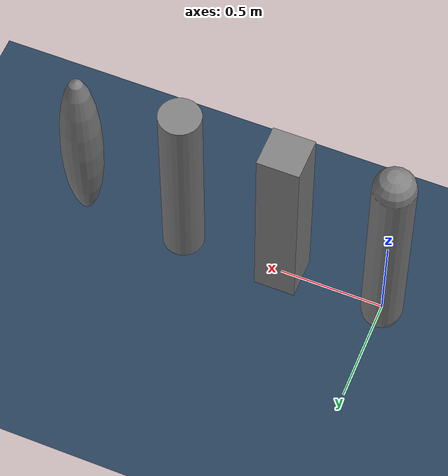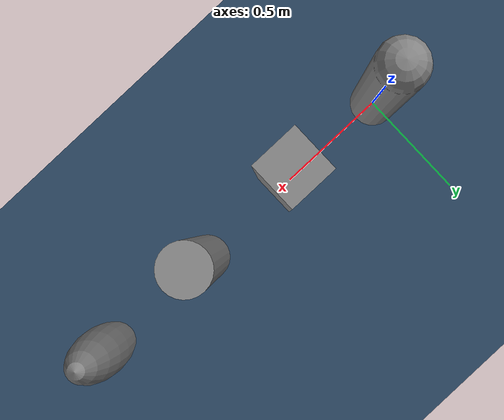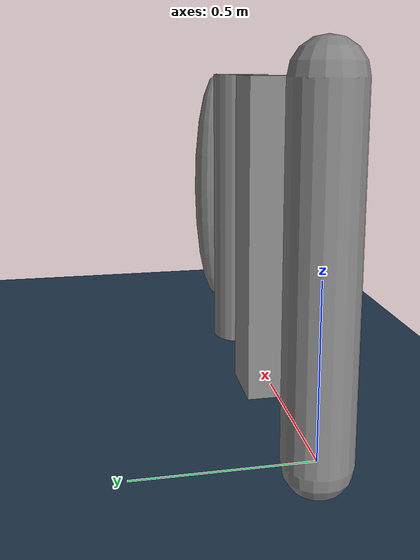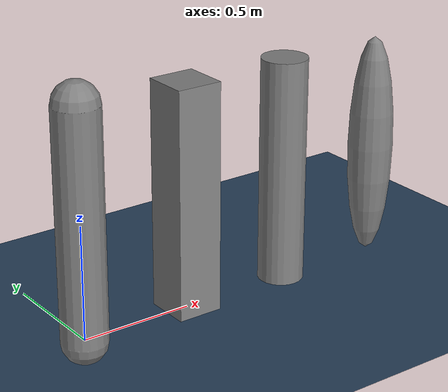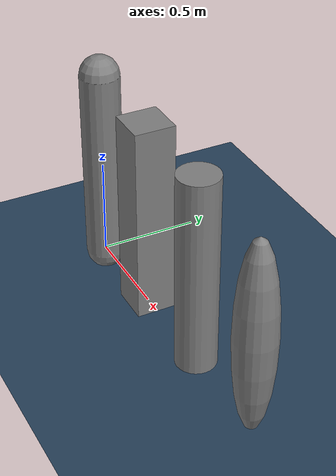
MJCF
<mujoco>
<asset>
<texture name="grid" type="2d" builtin="checker" width="512" height="512" rgb1=".1 .2 .3" rgb2=".2 .3 .4"/>
<material name="grid" texture="grid" texrepeat="1 1" texuniform="true" reflectance=".2"/>
</asset>
<worldbody>
<light pos="0 -1 5" dir="1 1 -10"/>
<light pos="1.5 -1 5" dir="-1 1 -10"/>
<camera name="front" pos=".75 -5 1.5" xyaxes="1 0 0 0 .3 1"/>
<geom type="plane" material="grid" size="0 0 .1" pos="0 0 -.1"/>
<geom type="capsule" size="0.1" fromto="0 0 0 0 0 1"/>
<geom type="box" size="0.1" fromto=".5 0 0 .5 0 1"/>
<geom type="cylinder" size="0.1" fromto="1 0 0 1 0 1"/>
<geom type="ellipsoid" size="0.1" fromto="1.5 0 0 1.5 0 1"/>
</worldbody>
</mujoco>
